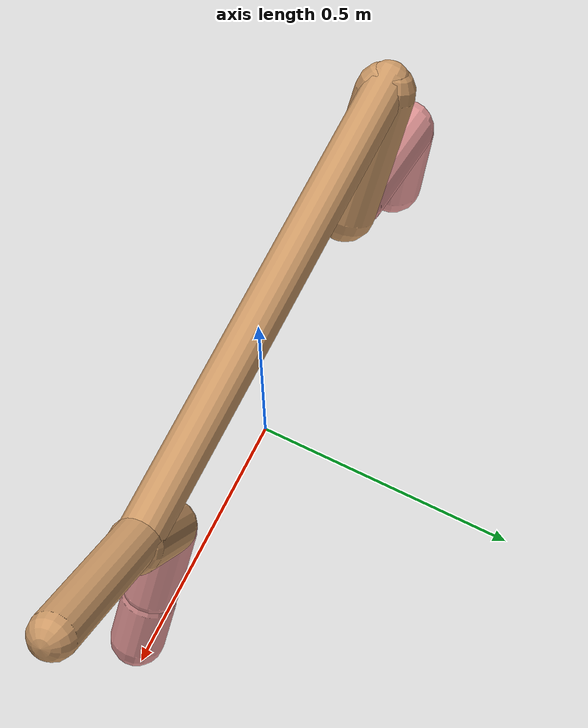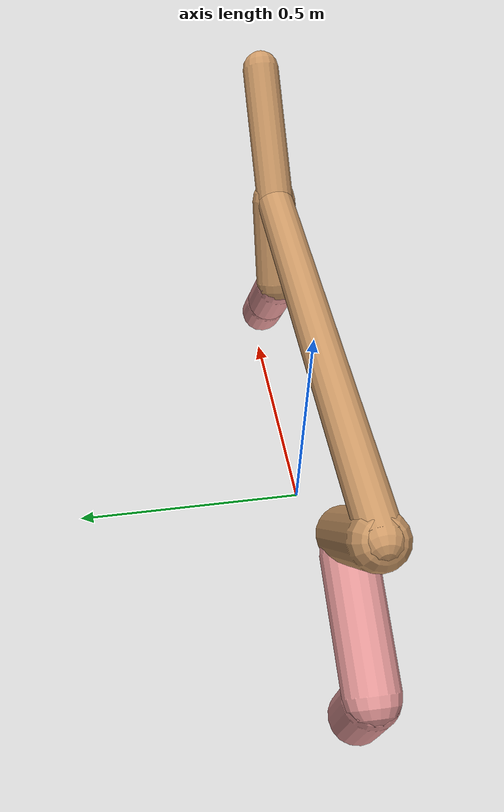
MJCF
<mujoco model="cheetah">
  <compiler angle="radian" coordinate="local" inertiafromgeom="true" settotalmass="14" />
  <default>
    <joint armature=".1" damping=".01" limited="true" solimplimit="0 .8 .03" solreflimit=".02 1" stiffness="8" />
    <geom conaffinity="0" condim="3" contype="1" friction="0.8 .1 .1" rgba="0.8 0.6 .4 1" solimp="0.0 0.8 0.01" solref="0.02 1" />
    <motor ctrllimited="true" ctrlrange="-1 1" />
  </default>
  <size nstack="300000" nuser_geom="1" />
  <option gravity="0 0 -9.81" timestep="0.01" />
  <worldbody>
    <body name="torso" pos="0.0 0.0 0.5298790389707302">
      <joint armature="0" axis="1 0 0" damping="0" limited="false" name="ignorex" pos="0 0 0" stiffness="0" type="slide" />
      <joint armature="0" axis="0 0 1" damping="0" limited="false" name="ignorez" pos="0 0 0" stiffness="0" type="slide" />
      <joint armature="0" axis="0 1 0" damping="0" limited="false" name="ignorey" pos="0 0 0" stiffness="0" type="hinge" />
      <geom fromto="-0.5 0.0 0.0 0.43682202298455386 0.0 0.0" name="torso" size="0.039731028603485714" type="capsule" />
      <geom axisangle="0 1 0 .87" name="head" pos="0.5368220229845538 0.0 0.1" size="0.04044072234011377 0.15" type="capsule" />

      <body name="bthigh" pos="-.5 0 0">
        <joint axis="0 1 0" damping="6" name="bthigh" pos="0 0 0" range="-.52 1.05" stiffness="240" type="hinge" />
        <geom axisangle="0 1 0 -3.8" name="bthigh" pos="0.08725418289413783 0.0 -0.11343043776237918" size="0.05450733942415414 0.12409530563623379" type="capsule" />
        <body name="bshin" pos="0.13450836578827566 0.0 -0.21686087552475836">
          <joint axis="0 1 0" damping="4.5" name="bshin" pos="0 0 0" range="-.785 .785" stiffness="180" type="hinge" />
          <geom axisangle="0 1 0 -2.03" name="bshin" pos="-0.1206575237325912 0.0 -0.0603287618662956" rgba="0.9 0.6 0.6 1" size="0.05450733942415414 0.12837445410644874" type="capsule" />
          <body name="bfoot" pos="-0.2413150474651824 0.0 -0.1206575237325912">
            <joint axis="0 1 0" damping="3" name="bfoot" pos="0 0 0" range="-.4 .785" stiffness="120" type="hinge" />
            <geom axisangle="0 1 0 -.27" name="bfoot" pos="0.025995791726657544 0.0 -0.08405305991619273" rgba="0.9 0.6 0.6 1" size="0.05450733942415414 0.08044799124004122" type="capsule" />
            <inertial mass="10" />
          </body>
        </body>
      </body>
      <body name="fthigh" pos="0.43682202298455386 0.0 0.0">
        <joint axis="0 1 0" damping="4.5" name="fthigh" pos="0 0 0" range="-1.5 0.8" stiffness="180" type="hinge" />
        <geom axisangle="0 1 0 .52" name="fthigh" pos="-0.050252596518258044 0.0 -0.08614730831701377" size="0.04827430403287525 0.09380861474183338" type="capsule" />
        <body name="fshin" pos="-0.10050519303651609 0.0 -0.17229461663402754">
          <joint axis="0 1 0" damping="3" name="fshin" pos="0 0 0" range="-1.2 1.1" stiffness="120" type="hinge" />
          <geom axisangle="0 1 0 -.6" name="fshin" pos="0.046712062396710156 0.0 -0.06467824024159867" rgba="0.9 0.6 0.6 1" size="0.04827430403287525 0.07476476062131081" type="capsule" />
          <body name="ffoot" pos="0.09342412479342031 0.0 -0.12935648048319734">
            <joint axis="0 1 0" damping="1.5" name="ffoot" pos="0 0 0" range="-3.1 -0.3" stiffness="60" type="hinge" />
            <geom axisangle="0 1 0 -.6" name="ffoot" pos="0.03384576889871287 0.0 -0.05264897384244226" rgba="0.9 0.6 0.6 1" size="0.04827430403287525 0.04937295512728073" type="capsule" />
            <inertial mass="10" />
          </body>
        </body>
      </body>
    </body>
  </worldbody>
  <actuator>
    <motor gear="120" joint="bthigh" name="bthigh" />
    <motor gear="90" joint="bshin" name="bshin" />
    <motor gear="60" joint="bfoot" name="bfoot" />
    <motor gear="120" joint="fthigh" name="fthigh" />
    <motor gear="60" joint="fshin" name="fshin" />
    <motor gear="30" joint="ffoot" name="ffoot" />
  </actuator>
</mujoco>
